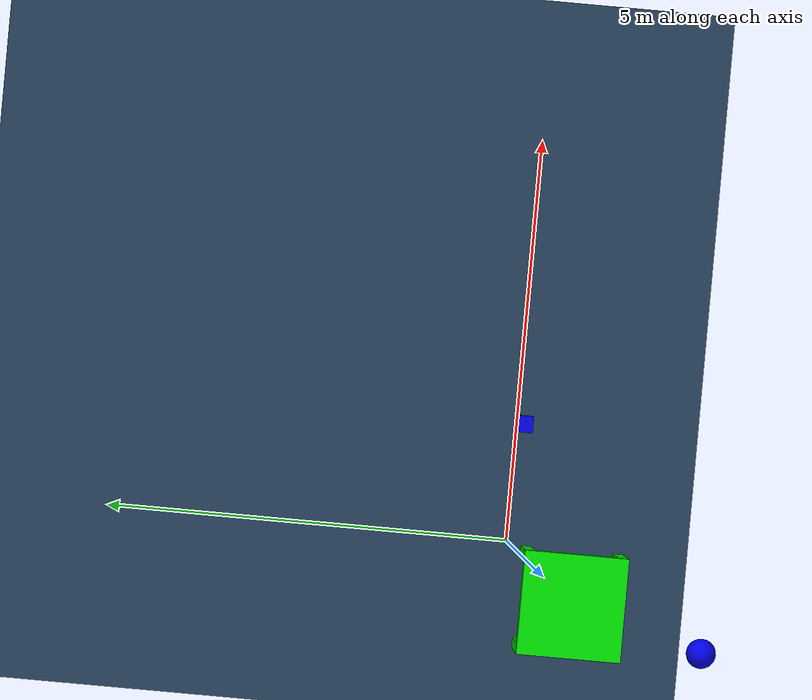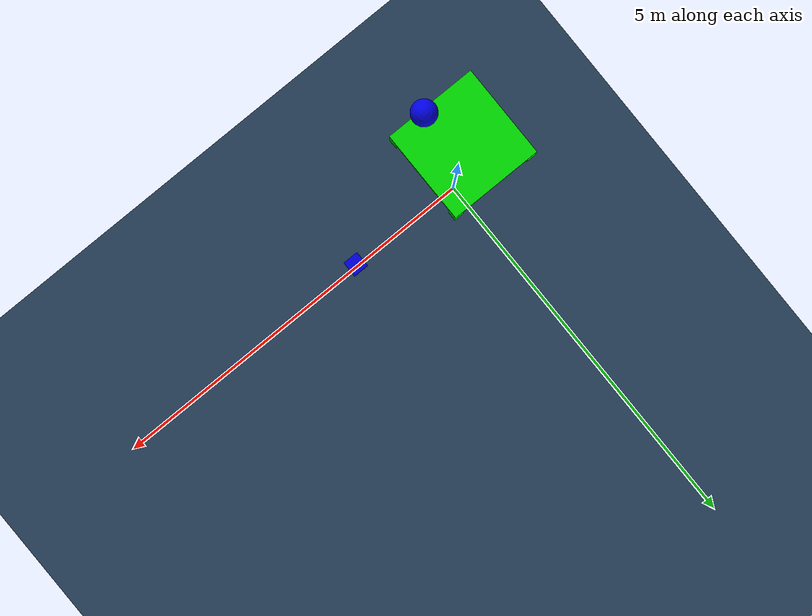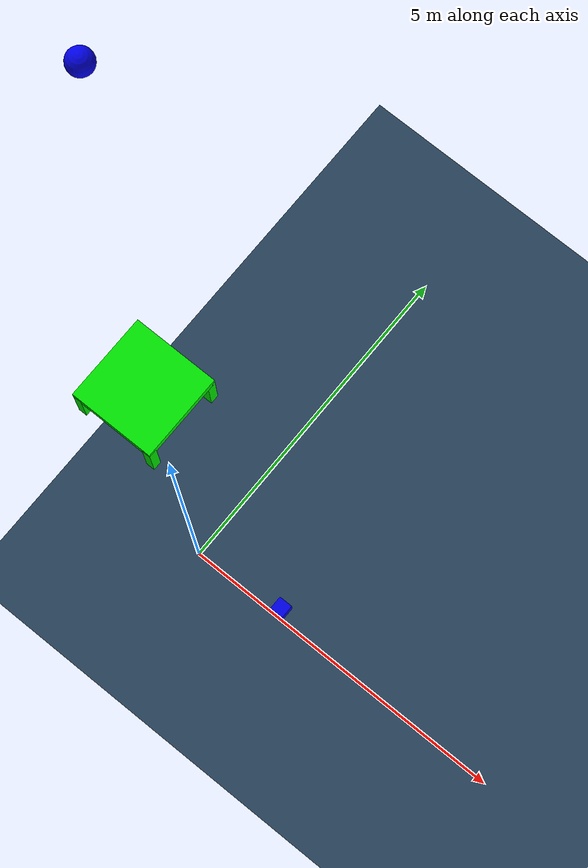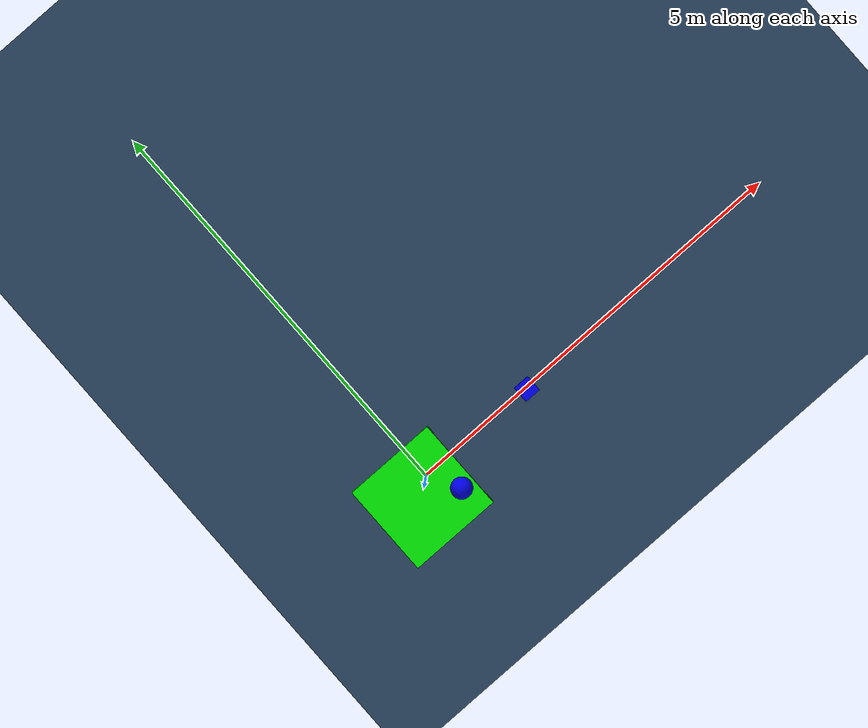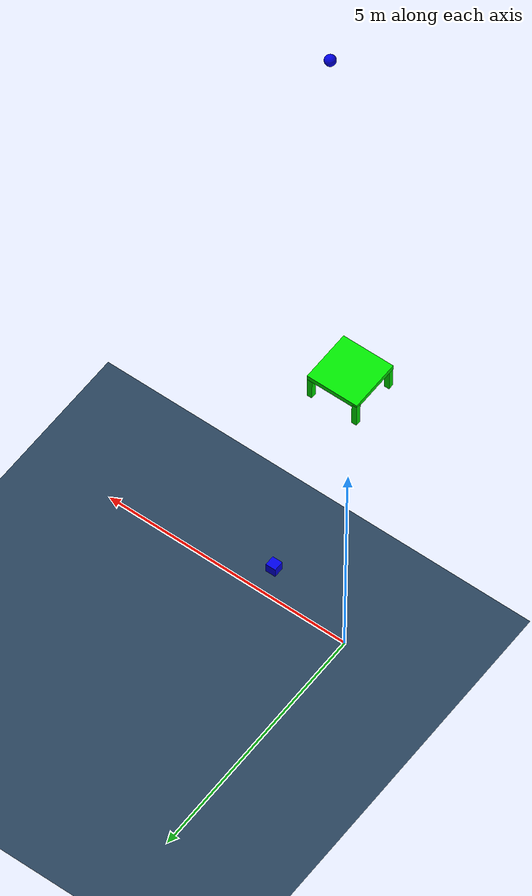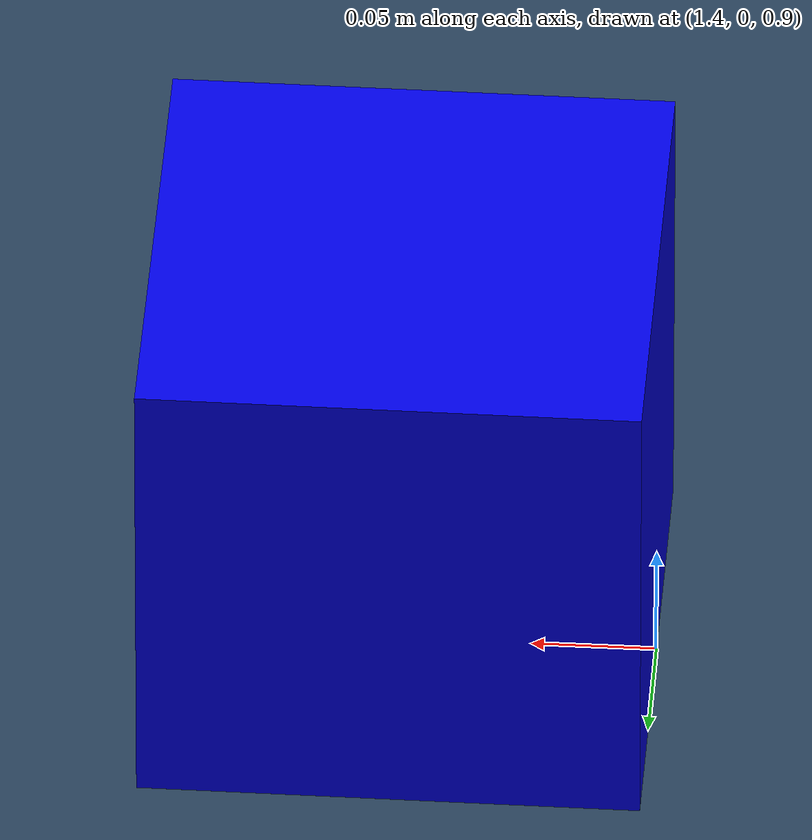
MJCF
<mujoco>
    <option timestep="0.001" integrator="RK4" gravity="0 0 -9.81">
        <flag sensornoise="disable" energy="enable" contact="enable" />
    </option>

    <asset>
        <texture name="grid" type="2d" builtin="checker" width="512" height="512" rgb1=".1 .2 .3"
            rgb2=".2 .3 .4" />
        <material name="grid" texture="grid" texrepeat="1 1" texuniform="true" reflectance=".2" />
    </asset>

    <worldbody>
        <geom name="floor" size="0 0 .05" type="plane" material="grid" />
        <light diffuse=".5 .5 .5" pos="0 0 5" dir="0 0 -1" />
    </worldbody>

    <worldbody>
        <body name="table" pos="0 0 8">
            <freejoint />
            <geom type="box" size=".5 .5 .05" rgba="0 .9 0 1" mass="6" />
            <geom type="box" pos=".45 .45 -.25" size=".05 .05 .25" rgba="0 .9 0 1" mass="1" />
            <geom type="box" pos=".45 -.45 -.25" size=".05 .05 .25" rgba="0 .9 0 1" mass="1" />
            <geom type="box" pos="-.45 .45 -.25" size=".05 .05 .25" rgba="0 .9 0 1" mass="1" />
            <geom type="box" pos="-.45 -.45 -.25" size=".05 .05 .25" rgba="0 .9 0 1" mass="1" />
        </body>
        <body name="bowling" pos=".5 0 16" >
            <freejoint />
            <geom type="sphere" size=".1 .1 .1" rgba="0 0 .9 1" mass="10" />
        </body>
        <body name="cube" pos="1.5 0 1" >
            <freejoint />
            <geom type="box" size=".1 .1 .1" rgba="0 0 .9 1" mass="10" />
        </body>
    </worldbody>
</mujoco>
